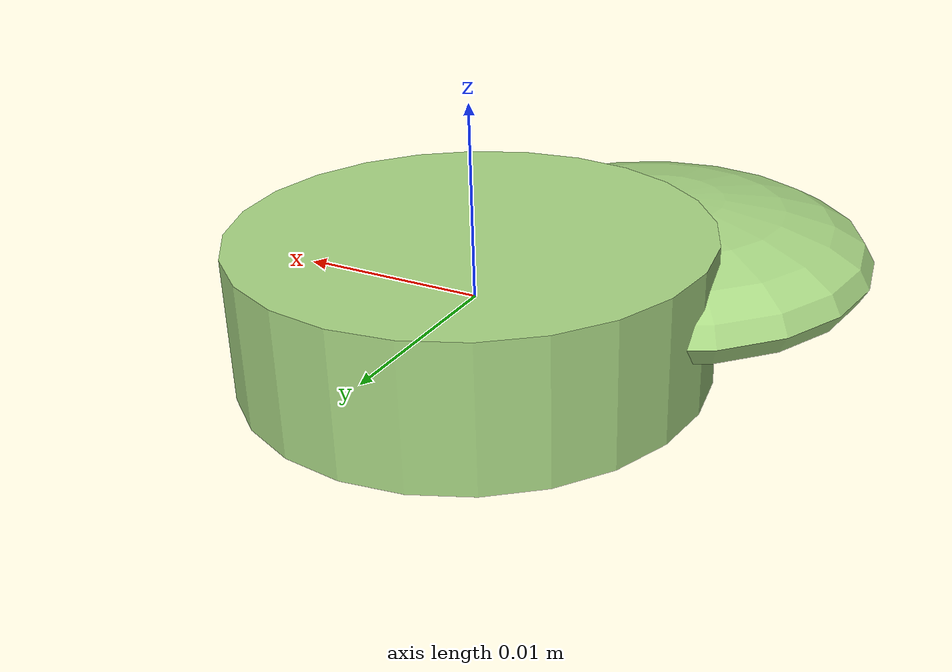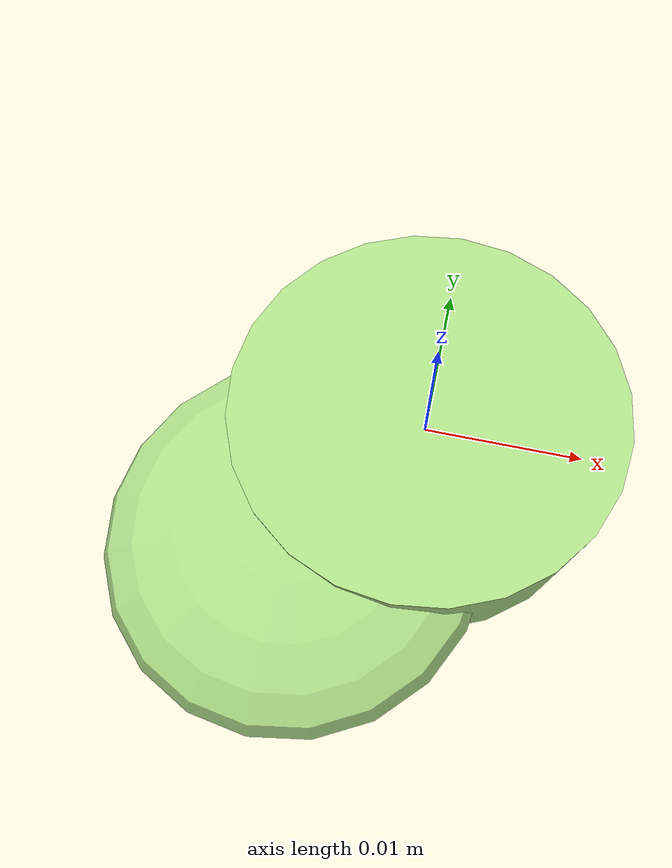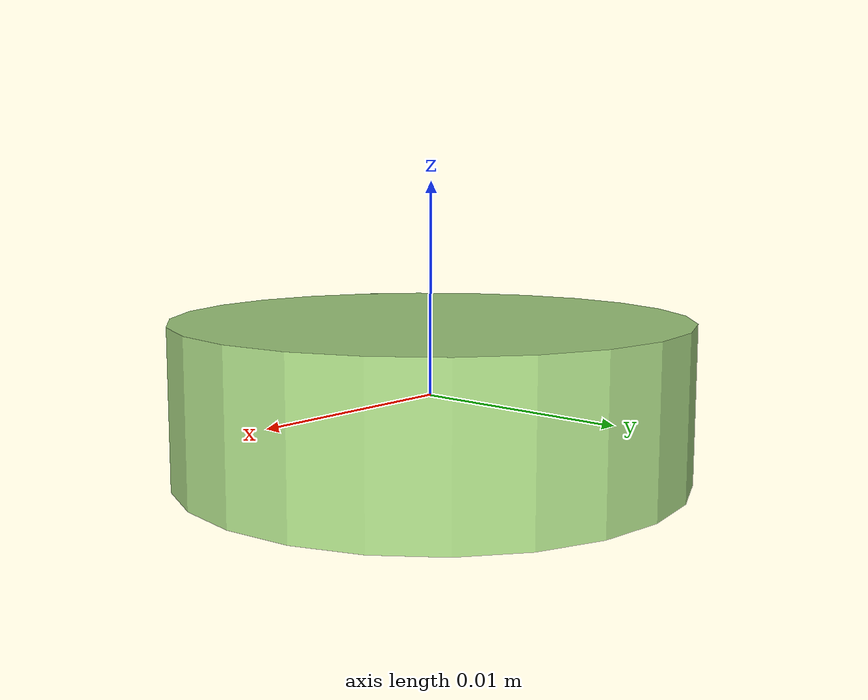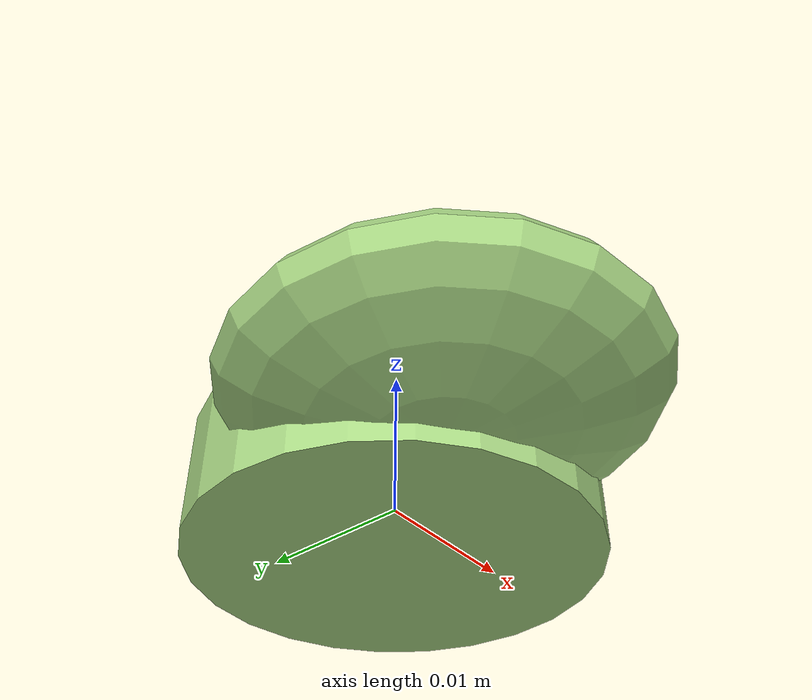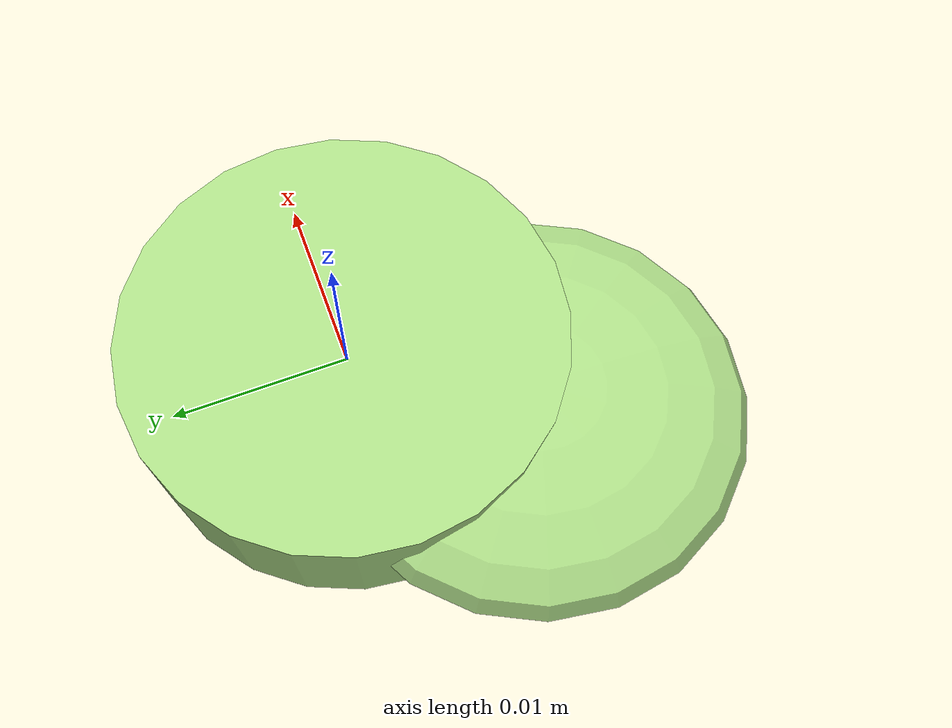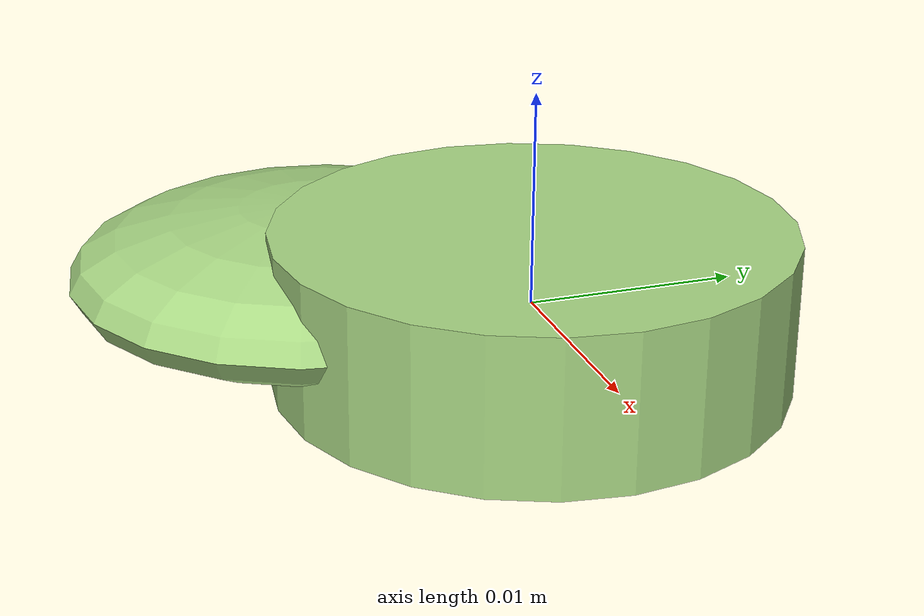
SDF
<?xml version="1.0" ?>
<!-- |    This document was autogenerated by xmacro from data/veggie_template/veggie_base.sdf.xacro  | -->
<!-- |    EDITING THIS FILE BY HAND IS NOT RECOMMENDED                                               | -->
<sdf version="1.8">
	<!-- Parameters -->
	<!-- Base -->
	<!-- Joint 0 -->
	<!-- Link 1 -->
	<!-- Joint 1 -->
	<!-- Link 2 -->
	<!-- Primitives -->
	<!-- All dimensions are half -->
	<!-- Object -->
	<model name="veggie">
		<!-- link0 -->
		<link name="link0">
			<inertial>
				<mass>0.0033919302586073816</mass>
				<inertia>
					<ixx>1.396771639777856e-07</ixx>
					<ixy>0</ixy>
					<ixz>0</ixz>
					<iyy>1.396771639777856e-07</iyy>
					<iyz>0</iyz>
					<izz>2.487114086029024e-07</izz>
				</inertia>
			</inertial>
			<visual name="link0_visual">
				<pose>0 0 0 0 0 0</pose>
				<geometry>
					<cylinder>
						<radius>0.012109867583758864</radius>
						<length>0.007362363182366097</length>
					</cylinder>
				</geometry>
				<material>
					<ambient>0.659 0.839 0.514 1</ambient>
					<diffuse>0.659 0.839 0.514 1</diffuse>
					<specular>0 0 0 0</specular>
					<emissive>0 0 0 1</emissive>
				</material>
			</visual>
			<collision name="link0_collision">
				<pose>0 0 0 0 0 0 </pose>
				<geometry>
					<cylinder>
						<radius>0.012109867583758864</radius>
						<length>0.007362363182366097</length>
					</cylinder>
				</geometry>
			</collision>
		</link>
		<!-- link1 -->
		<joint name="joint0" type="fixed">
			<pose relative_to="link0">-0.006355242743748788 -0.008521139770792002 0.000433461555476383 0.0 0.0 0.0</pose>
			<parent>link0</parent>
			<child>link1</child>
		</joint>
		<link name="link1">
			<pose relative_to="joint0">0 0 0 0 0 0</pose>
			<inertial>
				<mass>0.0018109114719921636</mass>
				<inertia>
					<ixx>5.347960694479969e-08</ixx>
					<ixy>0</ixy>
					<ixz>0</ixz>
					<iyy>5.156151677883862e-08</iyy>
					<iyz>0</iyz>
					<izz>9.757738722225635e-08</izz>
				</inertia>
			</inertial>
			<visual name="link1_visual">
				<pose>0 0 0 0 0 0</pose>
				<geometry>
					<ellipsoid>
						<radii>0.011491718709720397 0.011719877287032044 0.003209959431792141</radii>
					</ellipsoid>
				</geometry>
				<material>
					<ambient>0.659 0.839 0.514 1</ambient>
					<diffuse>0.659 0.839 0.514 1</diffuse>
					<specular>0 0 0 0</specular>
					<emissive>0 0 0 1</emissive>
				</material>
			</visual>
			<collision name="link1_collision">
				<pose>0 0 0 0 0 0 </pose>
				<geometry>
					<ellipsoid>
						<radii>0.011491718709720397 0.011719877287032044 0.003209959431792141</radii>
					</ellipsoid>
				</geometry>
			</collision>
		</link>
		<!-- link2 -->
	</model>
</sdf>
